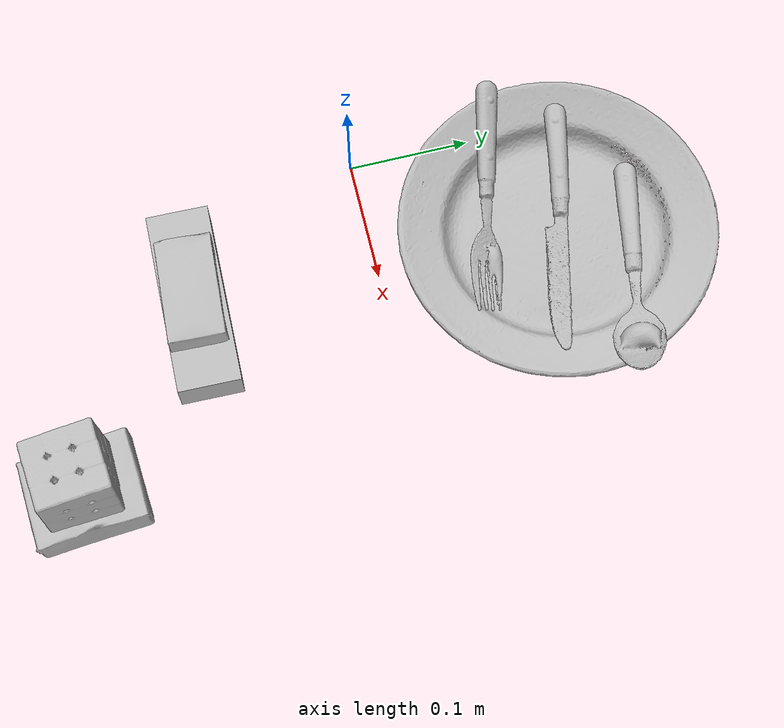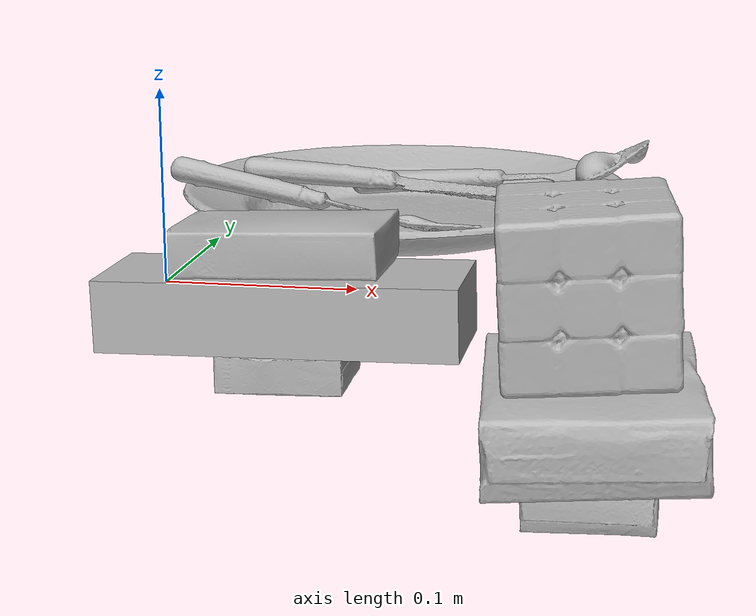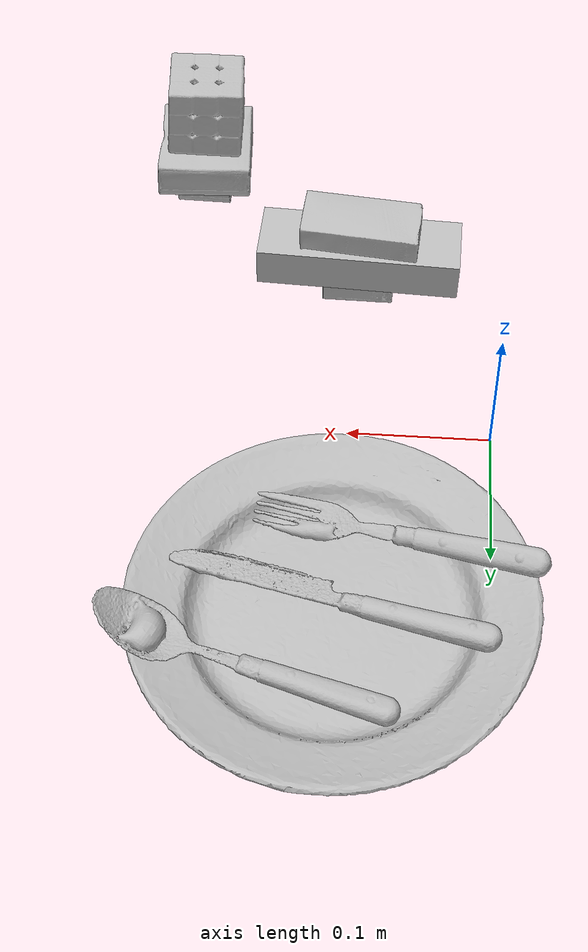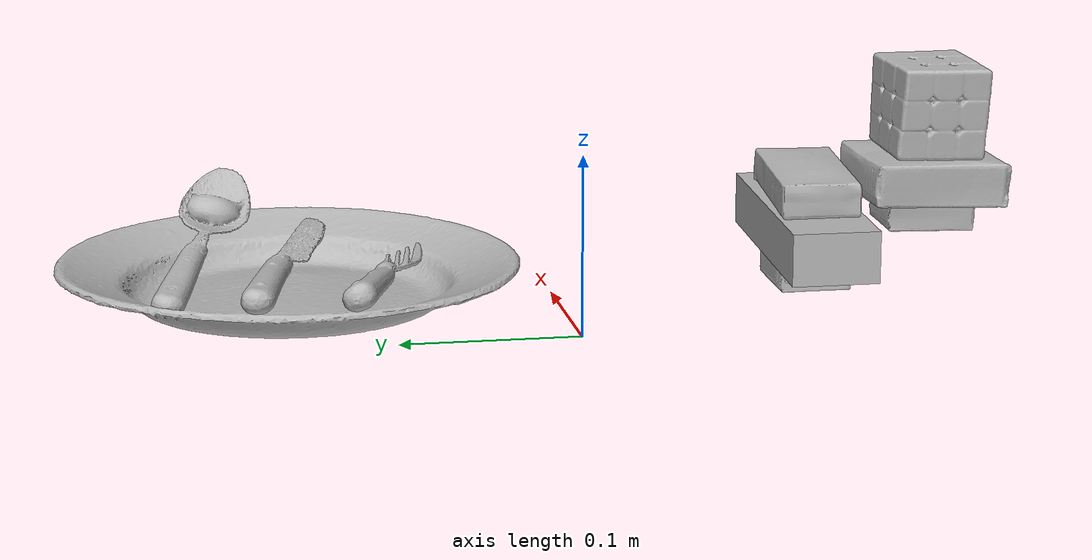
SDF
<?xml version="1.0" ?>
<sdf version="1.4">
  <world name="default">
    <light name="light1" type="point">
      <pose>0 0 1 0 0 0</pose>
      <diffuse>3 3 3 1</diffuse>
      <specular>3 3 3 1</specular>
    </light>
    <light name="light2" type="point">
      <pose>0 0.5 2 0 0 0</pose>
      <diffuse>1 1 1 1</diffuse>
      <specular>1 1 1 1</specular>
    </light>
    <light name="light3" type="point">
      <pose>0 0.5 2 0 0 0</pose>
      <diffuse>3 3 3 1</diffuse>
      <specular>3 3 3 1</specular>
    </light>
    <scene>
      <ambient>0.7 0.7 0.7</ambient>
    </scene>
    <model name="box11">
      <link name="link_box11">
        <collision name="default">
          <geometry>
            <mesh>
              <uri>model://pudding_box/collision_meshes/collision.obj</uri>
              <scale>0.5 0.5 0.5</scale>
            </mesh>
          </geometry>
          <surface>
            <friction>
              <ode>
                <mu>0.5</mu>
                <mu2>0.5</mu2>
              </ode>
            </friction>
          </surface>
        </collision>
        <visual name="default">
          <geometry>
            <mesh>
              <uri>model://pudding_box/visual_meshes/visual.dae</uri>
              <scale>0.5 0.5 0.5</scale>
            </mesh>
          </geometry>
        </visual>
        <inertial>
          <mass>0.03786866366863251</mass>
          <pose>0.00024474109522998333 0.00040339428232982755 -0.0002594413817860186 0.005213102272185547 -0.006603797326323335 0.020079825161634604</pose>
          <inertia>
            <ixx>1.0702144e-05</ixx>
            <iyy>7.2004777e-06</iyy>
            <izz>1.580451e-05</izz>
            <ixy>0</ixy>
            <ixz>0</ixz>
            <iyz>0</iyz>
          </inertia>
        </inertial>
      </link>
      <pose>0.22974516451358795 -0.260251522064209 0.009863452054560184 0.022921086133044014 -0.011150637555159066 5.809897238022697e-05</pose>
    </model>
    <model name="box12">
      <link name="link_box12">
        <collision name="default">
          <geometry>
            <mesh>
              <uri>model://gelatin_box/collision_meshes/collision.obj</uri>
              <scale>1.0 1.0 1.0</scale>
            </mesh>
          </geometry>
          <surface>
            <friction>
              <ode>
                <mu>0.5</mu>
                <mu2>0.5</mu2>
              </ode>
            </friction>
          </surface>
        </collision>
        <visual name="default">
          <geometry>
            <mesh>
              <uri>model://gelatin_box/visual_meshes/visual.dae</uri>
              <scale>1.0 1.0 1.0</scale>
            </mesh>
          </geometry>
        </visual>
        <inertial>
          <mass>0.12588495016098022</mass>
          <pose>0.0004319618456065655 0.00011156871914863586 -0.0003640321083366871 -0.0010503723379331838 -0.004755819617810625 0.016440561335826234</pose>
          <inertia>
            <ixx>8.886451e-05</ixx>
            <iyy>6.3475454e-05</iyy>
            <izz>0.00013527159</izz>
            <ixy>0</ixy>
            <ixz>0</ixz>
            <iyz>0</iyz>
          </inertia>
        </inertial>
      </link>
      <pose>0.2291843742132187 -0.261003702878952 0.034111388027668 0.03815660237637077 -0.03852546153614958 0.06438226275229712</pose>
    </model>
    <model name="box13">
      <link name="link_box13">
        <collision name="default">
          <geometry>
            <mesh>
              <uri>model://rubiks_cube/collision_meshes/collision.obj</uri>
              <scale>1.0 1.0 1.0</scale>
            </mesh>
          </geometry>
          <surface>
            <friction>
              <ode>
                <mu>0.5</mu>
                <mu2>0.5</mu2>
              </ode>
            </friction>
          </surface>
        </collision>
        <visual name="default">
          <geometry>
            <mesh>
              <uri>model://rubiks_cube/visual_meshes/visual.dae</uri>
              <scale>1.0 1.0 1.0</scale>
            </mesh>
          </geometry>
        </visual>
        <inertial>
          <mass>0.24923686683177948</mass>
          <pose>2.6721039830590598e-05 5.256966323941015e-05 -7.264316082000732e-06 -0.05467307197132049 -0.09814178001312306 -0.03445579173896148</pose>
          <inertia>
            <ixx>0.00013772011</ixx>
            <iyy>0.00013707785</iyy>
            <izz>0.00013886133</izz>
            <ixy>0</ixy>
            <ixz>0</ixz>
            <iyz>0</iyz>
          </inertia>
        </inertial>
      </link>
      <pose>0.22680549323558807 -0.26236864924430847 0.07727976143360138 0.021073668388664535 -0.06478344714064901 0.0884919416385092</pose>
    </model>
    <model name="box21">
      <link name="link_box21">
        <collision name="default">
          <geometry>
            <mesh>
              <uri>model://cracker_box/collision_meshes/collision.obj</uri>
              <scale>0.25 0.25 0.25</scale>
            </mesh>
          </geometry>
          <surface>
            <friction>
              <ode>
                <mu>0.5</mu>
                <mu2>0.5</mu2>
              </ode>
            </friction>
          </surface>
        </collision>
        <visual name="default">
          <geometry>
            <mesh>
              <uri>model://cracker_box/visual_meshes/visual.dae</uri>
              <scale>0.25 0.25 0.25</scale>
            </mesh>
          </geometry>
        </visual>
        <inertial>
          <mass>0.030397580936551094</mass>
          <pose>0.00023660376609768718 6.358562677633017e-05 -0.0004257384280208498 -0.0003162076301819785 -0.011106490531717715 0.002546795235004545</pose>
          <inertia>
            <ixx>4.8323677e-06</ixx>
            <iyy>7.979188e-06</iyy>
            <izz>1.1387034e-05</izz>
            <ixy>0</ixy>
            <ixz>0</ixz>
            <iyz>0</iyz>
          </inertia>
        </inertial>
      </link>
      <pose>0.09994037449359894 -0.14984706044197083 0.009121171198785305 -0.011958403026397828 -0.007398643362504551 -0.00011358965475505413</pose>
    </model>
    <model name="box22">
      <link name="link_box22">
        <collision name="default">
          <geometry>
            <mesh>
              <uri>model://jenga/collision_meshes/collision.obj</uri>
              <scale>1.0 1.0 1.0</scale>
            </mesh>
          </geometry>
          <surface>
            <friction>
              <ode>
                <mu>0.5</mu>
                <mu2>0.5</mu2>
              </ode>
            </friction>
          </surface>
        </collision>
        <visual name="default">
          <geometry>
            <mesh>
              <uri>model://jenga/visual_meshes/visual.dae</uri>
              <scale>1.0 1.0 1.0</scale>
            </mesh>
          </geometry>
        </visual>
        <inertial>
          <mass>0.22754427790641785</mass>
          <pose>-2.502855807051674e-07 -0.00010250010382151231 -4.0923401684267446e-05 0.0 -7.34215461761844e-07 0.0</pose>
          <inertia>
            <ixx>6.2967025e-05</ixx>
            <iyy>0.00042666285</iyy>
            <izz>0.00045549884</izz>
            <ixy>0</ixy>
            <ixz>0</ixz>
            <iyz>0</iyz>
          </inertia>
        </inertial>
      </link>
      <pose>0.09956631064414978 -0.1495959311723709 0.032978277653455734 -0.005111972667396528 -0.023882131913086736 -0.023957764407217558</pose>
    </model>
    <model name="box23">
      <link name="link_box23">
        <collision name="default">
          <geometry>
            <mesh>
              <uri>model://sugar_box/collision_meshes/collision.obj</uri>
              <scale>0.5 0.5 0.5</scale>
            </mesh>
          </geometry>
          <surface>
            <friction>
              <ode>
                <mu>0.5</mu>
                <mu2>0.5</mu2>
              </ode>
            </friction>
          </surface>
        </collision>
        <visual name="default">
          <geometry>
            <mesh>
              <uri>model://sugar_box/visual_meshes/visual.dae</uri>
              <scale>0.5 0.5 0.5</scale>
            </mesh>
          </geometry>
        </visual>
        <inertial>
          <mass>0.07313712686300278</mass>
          <pose>0.0005171863595023751 1.924554817378521e-05 -0.00018182402709499002 -0.0004046264167799433 0.0010506636386831275 0.0026153785560066108</pose>
          <inertia>
            <ixx>1.5234412e-05</ixx>
            <iyy>4.924075e-05</iyy>
            <izz>5.894705e-05</izz>
            <ixy>0</ixy>
            <ixz>0</ixz>
            <iyz>0</iyz>
          </inertia>
        </inertial>
      </link>
      <pose>0.09866254031658173 -0.14971941709518433 0.05936161056160927 -0.0035272563490283118 -0.04744169668712434 -0.05927047326269554</pose>
    </model>
    <model name="plate1">
      <link name="link_plate1">
        <collision name="default">
          <geometry>
            <mesh>
              <uri>model://plate/collision_meshes/collision.obj</uri>
              <scale>1.0 1.0 1.0</scale>
            </mesh>
          </geometry>
          <surface>
            <friction>
              <ode>
                <mu>0.5</mu>
                <mu2>0.5</mu2>
              </ode>
            </friction>
          </surface>
        </collision>
        <visual name="default">
          <geometry>
            <mesh>
              <uri>model://plate/visual_meshes/visual.dae</uri>
              <scale>1.0 1.0 1.0</scale>
            </mesh>
          </geometry>
        </visual>
        <inertial>
          <mass>0.2069685012102127</mass>
          <pose>-0.0006044612964615226 0.0002782598603516817 -0.0010561986127868295 0.0022188143427174073 -0.003225461822968263 0.4526007532235607</pose>
          <inertia>
            <ixx>0.0009682027</ixx>
            <iyy>0.0009589421</iyy>
            <izz>0.0018936595</izz>
            <ixy>0</ixy>
            <ixz>0</ixz>
            <iyz>0</iyz>
          </inertia>
        </inertial>
      </link>
      <pose>0.10000002384185791 0.15000003576278687 0.013733004219830036 1.0977963322989512e-07 2.9103835158020082e-08 -1.4885697849653928e-07</pose>
    </model>
    <model name="silverware1">
      <link name="link_silverware1">
        <collision name="default">
          <geometry>
            <mesh>
              <uri>model://knife/collision_meshes/collision.obj</uri>
              <scale>1.0 1.0 1.0</scale>
            </mesh>
          </geometry>
          <surface>
            <friction>
              <ode>
                <mu>0.5</mu>
                <mu2>0.5</mu2>
              </ode>
            </friction>
          </surface>
        </collision>
        <visual name="default">
          <geometry>
            <mesh>
              <uri>model://knife/visual_meshes/visual.dae</uri>
              <scale>1.0 1.0 1.0</scale>
            </mesh>
          </geometry>
        </visual>
        <inertial>
          <mass>0.01404397189617157</mass>
          <pose>-0.02378525771200657 0.0015275126788765192 5.0620223191799596e-05 0.07306830572090188 0.017248424252748085 -0.00740981553779352</pose>
          <inertia>
            <ixx>3.9862488e-07</ixx>
            <iyy>5.3954667e-05</iyy>
            <izz>5.408303e-05</izz>
            <ixy>0</ixy>
            <ixz>0</ixz>
            <iyz>0</iyz>
          </inertia>
        </inertial>
      </link>
      <pose>0.10002198815345764 0.14962029457092285 0.024773137643933296 0.06874027150525915 0.013021362575215873 -0.2436887133091798</pose>
    </model>
    <model name="silverware2">
      <link name="link_silverware2">
        <collision name="default">
          <geometry>
            <mesh>
              <uri>model://fork/collision_meshes/collision.obj</uri>
              <scale>1.0 1.0 1.0</scale>
            </mesh>
          </geometry>
          <surface>
            <friction>
              <ode>
                <mu>0.5</mu>
                <mu2>0.5</mu2>
              </ode>
            </friction>
          </surface>
        </collision>
        <visual name="default">
          <geometry>
            <mesh>
              <uri>model://fork/visual_meshes/visual.dae</uri>
              <scale>1.0 1.0 1.0</scale>
            </mesh>
          </geometry>
        </visual>
        <inertial>
          <mass>0.012992284260690212</mass>
          <pose>-0.029570037499070168 0.0004658822435885668 0.00032188609475269914 -0.013552170713958372 -0.010977837352032947 0.014453895109592321</pose>
          <inertia>
            <ixx>4.5545306e-07</ixx>
            <iyy>3.3919117e-05</iyy>
            <izz>3.4122822e-05</izz>
            <ixy>0</ixy>
            <ixz>0</ixz>
            <iyz>0</iyz>
          </inertia>
        </inertial>
      </link>
      <pose>0.06033892557024956 0.10032851994037628 0.02279278263449669 -0.3424550608298248 0.13395082664915817 -0.2611585698412702</pose>
    </model>
    <model name="silverware3">
      <link name="link_silverware3">
        <collision name="default">
          <geometry>
            <mesh>
              <uri>model://spoon/collision_meshes/collision.obj</uri>
              <scale>1.0 1.0 1.0</scale>
            </mesh>
          </geometry>
          <surface>
            <friction>
              <ode>
                <mu>0.5</mu>
                <mu2>0.5</mu2>
              </ode>
            </friction>
          </surface>
        </collision>
        <visual name="default">
          <geometry>
            <mesh>
              <uri>model://spoon/visual_meshes/visual.dae</uri>
              <scale>1.0 1.0 1.0</scale>
            </mesh>
          </geometry>
        </visual>
        <inertial>
          <mass>0.01562128309160471</mass>
          <pose>-0.0055263228714466095 -0.0016034174477681518 -0.0007271653157658875 0.03521671072610287 -0.03906584128735088 0.006150609582760137</pose>
          <inertia>
            <ixx>8.688809e-07</ixx>
            <iyy>5.9438455e-05</iyy>
            <izz>5.986695e-05</izz>
            <ixy>0</ixy>
            <ixz>0</ixz>
            <iyz>0</iyz>
          </inertia>
        </inertial>
      </link>
      <pose>0.15113018453121185 0.2005566507577896 0.02359253168106079 0.14540279094562472 -0.10849530043862754 -0.23125798021125887</pose>
    </model>
  </world>
</sdf>
